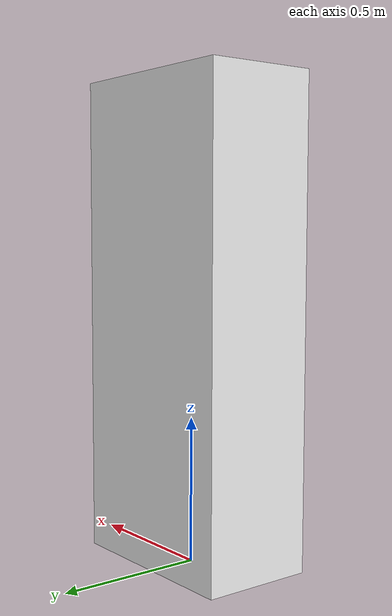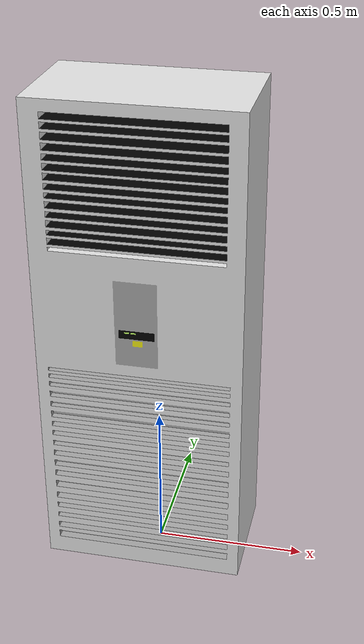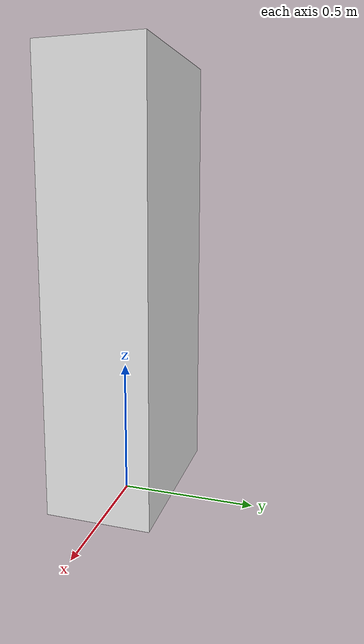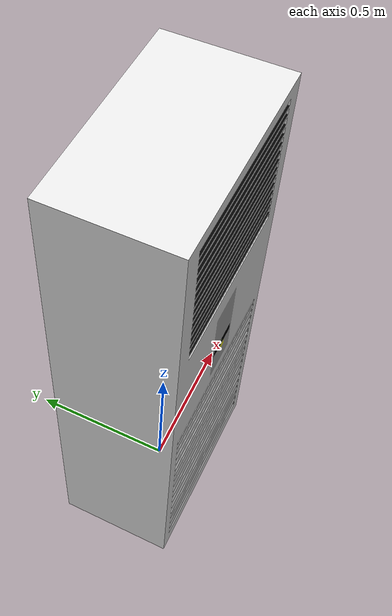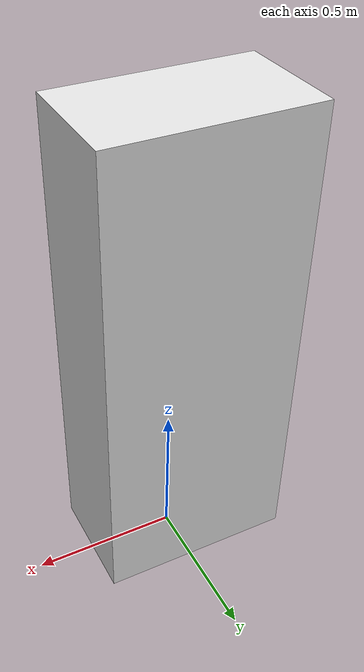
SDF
<?xml version="1.0"?>
<sdf version="1.4">
  <model name="airconditioner">
    <static>false</static>
    <link name="link">
     <collision name="collision">
	<pose>-0.02 0.005 0.82 0 0 0</pose>
        <geometry>
	<box><size>0.67 0.39 1.64</size></box>
        </geometry>
      </collision>
      <visual name="visual">
	<geometry>
	  <mesh>
            <uri>model://airconditioner/meshes/airconditioner.dae</uri>
          	<scale>0.25 0.25 0.25</scale>
	  </mesh>
        </geometry>
      </visual>
    </link>
  </model>
</sdf>
